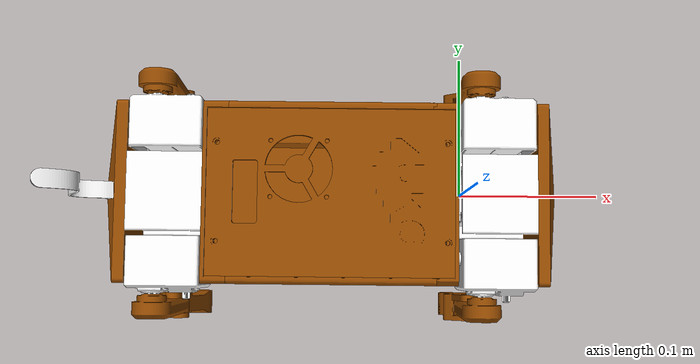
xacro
<?xml version="1.0"?>
<robot name="zuko" xmlns:xacro="http://www.ros.org/wiki/xacro">

   <material name="brown">
    <color rgba="0.588 0.294 0.0 1"/>
  </material>
  <material name="black">
    <color rgba="0.1 0.1 0.1 1"/>
  </material>
  <material name="white">
    <color rgba="1 1 1 1"/>
  </material>

<xacro:macro name="mesh_link" params="name origin_xyz origin_rpy meshfile meshscale c_xyz matname mass i_xyz i_rpy length width height">
	<link name="${name}">
	  <visual>
		<origin rpy="${origin_rpy}" xyz="${origin_xyz}" />
		<geometry>
		  <mesh filename="${meshfile}" scale="${meshscale}"/>
		</geometry>
		<material name="${matname}"/>
	  </visual>
	  <collision>
		<origin rpy="${origin_rpy}" xyz="${c_xyz}" />
		<geometry>
		  <box size="${length} ${width} ${height}" />
		</geometry>
	  </collision>
	  <inertial>
		<mass value="${mass}" />
		<origin rpy="${i_rpy}" xyz="${i_xyz}" /> <!-- Inertial Axes -->
		<inertia ixx="${mass * (width * width + height * height)/12.0}" ixy="${0}" ixz="${0}" iyx="${0}" iyy="${mass * (length * length + height * height)/12.0}" iyz="${0}" izx="${0}" izy="${0}" izz="${mass * (length * length + width * width)/12.0}" />
	  </inertial>
	</link>
	<gazebo reference="${name}">
		<xacro:if value="${matname == 'black'}">
		  <material>Gazebo/Black</material>
		</xacro:if>
		<xacro:if value="${matname == 'white'}">
		  <material>Gazebo/White</material>
		</xacro:if>
	</gazebo>
</xacro:macro>

<xacro:macro name="mesh_mesh_link" params="name origin_xyz origin_rpy meshfile meshscale c_xyz matname mass i_xyz i_rpy length width height">
	<link name="${name}">
	  <visual>
		<origin rpy="${origin_rpy}" xyz="${origin_xyz}" />
		<geometry>
		  <mesh filename="${meshfile}" scale="${meshscale}"/>
		</geometry>
		<material name="${matname}"/>
	  </visual>
	  <collision>
		<origin rpy="${origin_rpy}" xyz="${c_xyz}" />
		<geometry>
		  <mesh filename="${meshfile}" scale="${meshscale}"/>
		</geometry>
	  </collision>
	  <inertial>
		<mass value="${mass}" />
		<origin rpy="${i_rpy}" xyz="${i_xyz}" /> <!-- Inertial Axes -->
		<inertia ixx="${mass * (width * width + height * height)/12.0}" ixy="${0}" ixz="${0}" iyx="${0}" iyy="${mass * (length * length + height * height)/12.0}" iyz="${0}" izx="${0}" izy="${0}" izz="${mass * (length * length + width * width)/12.0}" />
	  </inertial>
	</link>
	<gazebo reference="${name}">
		<xacro:if value="${matname == 'black'}">
		  <material>Gazebo/Black</material>
		</xacro:if>
		<xacro:if value="${matname == 'white'}">
		  <material>Gazebo/White</material>
		</xacro:if>
	</gazebo>
</xacro:macro>

<xacro:macro name="frame_joint" params="name type origin_rpy origin_xyz parent child">
	<joint name="${name}" type="${type}">
	  <origin rpy="${origin_rpy}" xyz="${origin_xyz}" />
	  <parent link="${parent}" />
	  <child link="${child}" />
	</joint>
</xacro:macro>

<xacro:macro name="rev_joint" params="name type axis_xyz origin_rpy origin_xyz parent child effort velocity damping friction upper lower">
    <joint name="${name}" type="${type}">
      <axis xyz="${axis_xyz}" />
      <origin rpy="${origin_rpy}" xyz="${origin_xyz}" />
      <parent link="${parent}" />
      <child link="${child}" />
      <limit effort="${effort}" velocity="${velocity}" lower="${lower}" upper="${upper}"/>
      <joint_properties damping="${damping}" friction="${friction}" />
    </joint>
  </xacro:macro>

<xacro:macro name="transmission" params="leg ">
    <transmission name="${leg}_hip_joint_trans">
        <type>transmission_interface/SimpleTransmission</type>
        <joint name="${leg}_hip_rev_joint">
            <hardwareInterface>hardware_interface/EffortJointInterface</hardwareInterface>
        </joint>
        <actuator name="${leg}_hip_joint_motor">
            <hardwareInterface>hardware_interface/EffortJointInterface</hardwareInterface>
            <mechanicalReduction>1</mechanicalReduction>
        </actuator>
    </transmission>
    <transmission name="${leg}_upper_leg_joint_trans">
        <type>transmission_interface/SimpleTransmission</type>
        <joint name="${leg}_lower_leg_rev_joint">
            <hardwareInterface>hardware_interface/EffortJointInterface</hardwareInterface>
        </joint>
        <actuator name="${leg}_upper_leg_joint_motor">
            <hardwareInterface>hardware_interface/EffortJointInterface</hardwareInterface>
            <mechanicalReduction>1</mechanicalReduction>
        </actuator>
    </transmission>
    <transmission name="${leg}_lower_leg_joint_trans">
        <type>transmission_interface/SimpleTransmission</type>
        <joint name="${leg}_upper_leg_rev_joint">
            <hardwareInterface>hardware_interface/EffortJointInterface</hardwareInterface>
        </joint>
        <actuator name="${leg}_lower_joint_motor">
            <hardwareInterface>hardware_interface/EffortJointInterface</hardwareInterface>
            <mechanicalReduction>1</mechanicalReduction>
        </actuator>
    </transmission>
</xacro:macro>

<!-- STATIC Links -->

	<!-- Offsets-->
	<!-- center front and center back orgin is 2.5mm inside the part-->
	<xacro:property name="center_thickness" value="0.018" />
	<xacro:property name="center_orgin_offset" value="0.0025" />
	<xacro:property name="side_length" value="0.148" />
	<xacro:property name="bridge_length" value="0.0535" />

	<xacro:property name="center_origin_to_top_cover_inset" value="0.019" />

	<xacro:mesh_link name="base_link"
		origin_rpy="${pi/2} 0 -${pi/2}"
		origin_xyz="${-center_orgin_offset} 0 0"
		i_rpy="0 0 0"
		i_xyz="0 0 0"
		mass="0.6"
		c_xyz="${-center_orgin_offset} 0 0"
		length="0"
		width="0"
		height="0"
		matname="brown"
		meshfile="package://stl/center_front.stl"
		meshscale="1 1 1" />

	<xacro:mesh_link name="side_left_link"
		origin_rpy="${pi/2} 0 ${pi/2}"
		origin_xyz="0 0 0"
		i_rpy="0 0 0"
		i_xyz="0 0 0"
		mass="0.6"
		c_xyz="0 0 0"
		length="0"
		width="0"
		height="0"
		matname="brown"
		meshfile="package://stl/side_left.stl"
		meshscale="1 1 1" />

	<xacro:mesh_link name="side_right_link"
		origin_rpy="${pi/2} 0 -${pi/2}"
		origin_xyz="0 0 0"
		i_rpy="0 0 0"
		i_xyz="0 0 0"
		mass="0.6"
		c_xyz="0 0 0"
		length="0"
		width="0"
		height="0"
		matname="brown"
		meshfile="package://stl/side_right.stl"
		meshscale="1 1 1" />

	<xacro:mesh_link name="center_back_link"
		origin_rpy="${pi/2} 0 ${pi/2}"
		origin_xyz="${center_orgin_offset} 0 0"
		i_rpy="0 0 0"
		i_xyz="0 0 0"
		mass="0.6"
		c_xyz="${center_orgin_offset} 0 0"
		length="0"
		width="0"
		height="0"
		matname="brown"
		meshfile="package://stl/center_back.stl"
		meshscale="1 1 1" />

	<xacro:mesh_link name="bridge_front_link"
		origin_rpy="${pi/2} 0 -${pi/2}"
		origin_xyz="0 0 0"
		i_rpy="0 0 0"
		i_xyz="0 0 0"
		mass="0.6"
		c_xyz="0 0 0"
		length="0"
		width="0"
		height="0"
		matname="white"
		meshfile="package://stl/bridge_front.stl"
		meshscale="1 1 1" />

	<xacro:mesh_link name="bridge_back_link"
		origin_rpy="${pi/2} 0 -${pi/2}"
		origin_xyz="0 0 0"
		i_rpy="0 0 0"
		i_xyz="0 0 0"
		mass="0.6"
		c_xyz="0 0 0"
		length="0"
		width="0"
		height="0"
		matname="white"
		meshfile="package://stl/bridge_back.stl"
		meshscale="1 1 1" />

	<xacro:mesh_link name="face_link"
		origin_rpy="${pi/2} 0 ${pi/2}"
		origin_xyz="0 0 0"
		i_rpy="0 0 0"
		i_xyz="0 0 0"
		mass="0.6"
		c_xyz="0 0 0"
		length="0"
		width="0"
		height="0"
		matname="brown"
		meshfile="package://stl/face.stl"
		meshscale="1 1 1" />

	<xacro:mesh_link name="butt_link"
		origin_rpy="${pi/2} 0 -${pi/2}"
		origin_xyz="0 0 0"
		i_rpy="0 0 0"
		i_xyz="0 0 0"
		mass="0.6"
		c_xyz="0 0 0"
		length="0"
		width="0"
		height="0"
		matname="brown"
		meshfile="package://stl/butt.stl"
		meshscale="1 1 1" />

	<xacro:mesh_link name="electronics_cover_link"
		origin_rpy="0 0 0"
		origin_xyz="0 0 0"
		i_rpy="0 0 0"
		i_xyz="0 0 0"
		mass="0.6"
		c_xyz="0 0 0"
		length="0"
		width="0"
		height="0"
		matname="brown"
		meshfile="package://stl/electronics_cover.stl"
		meshscale="1 1 1" />

	<xacro:mesh_link name="battery_cover_link"
		origin_rpy="0 0 0"
		origin_xyz="0 0 0"
		i_rpy="0 0 0"
		i_xyz="0 0 0"
		mass="0.6"
		c_xyz="0 0 0"
		length="0"
		width="0"
		height="0"
		matname="brown"
		meshfile="package://stl/battery_cover.stl"
		meshscale="1 1 1" />

	<xacro:mesh_link name="tail_link"
		origin_rpy="${pi/2} ${35 * pi/180} 0"
		origin_xyz="0 0 0"
		i_rpy="0 0 0"
		i_xyz="0 0 0"
		mass="0.6"
		c_xyz="0 0 0"
		length="0"
		width="0"
		height="0"
		matname="white"
		meshfile="package://stl/tail.stl"
		meshscale="1 1 1" />

<!-- STATIC Joints -->

<xacro:frame_joint name="side_left_joint"
			type="fixed"
			origin_rpy="0 0 0"
			origin_xyz="${-center_thickness - side_length} 0.060 0.015"
			parent="base_link"
			child="side_left_link"/>

<xacro:frame_joint name="side_right_joint"
			type="fixed"
			origin_rpy="0 0 0"
			origin_xyz="-${center_thickness} -0.060 0.015"
			parent="base_link"
			child="side_right_link"/>

<xacro:frame_joint name="center_back_joint"
			type="fixed"
			origin_rpy="0 0 0"
			origin_xyz="${-side_length - center_thickness - center_thickness} 0 0"
			parent="base_link"
			child="center_back_link"/>

<xacro:frame_joint name="bridge_front_joint"
			type="fixed"
			origin_rpy="0 0  0"
			origin_xyz="${bridge_length} 0 -0.010"
			parent="base_link"
			child="bridge_front_link"/>

<xacro:frame_joint name="bridge_back_joint"
			type="fixed"
			origin_rpy="0 0 0"
			origin_xyz="0 0 -0.010"
			parent="center_back_link"
			child="bridge_back_link"/>

<xacro:frame_joint name="face_joint"
			type="fixed"
			origin_rpy="0 0 0"
			origin_xyz="0 0 0"
			parent="bridge_front_link"
			child="face_link"/>

<xacro:frame_joint name="butt_joint"
			type="fixed"
			origin_rpy="0 0 0"
			origin_xyz="-${bridge_length} 0 0"
			parent="bridge_back_link"
			child="butt_link"/>

<xacro:frame_joint name="electronics_cover_joint"
			type="fixed"
			origin_rpy="0 0 ${pi}"
			origin_xyz="${-0.089 - 0.003} 0 ${center_origin_to_top_cover_inset}"
			parent="base_link"
			child="electronics_cover_link"/>

<xacro:frame_joint name="battery_cover_joint"
			type="fixed"
			origin_rpy="${pi} 0 ${pi}"
			origin_xyz="${-0.09075 - 0.003} 0 -0.039"
			parent="base_link"
			child="battery_cover_link"/>

<xacro:frame_joint name="tail_joint"
			type="fixed"
			origin_rpy="0 0 0 "
			origin_xyz="-0.012419 0 0.025687"
			parent="butt_link"
			child="tail_link"/>

<!-- Hips/Legs Links/Joints -->

	<!-- Offsets -->
		<xacro:property name="servo_flange_protrusion_from_center_distance" value="0.002" />
		<xacro:property name="hip_origin_to_upper_leg_servo_origin_x" value="${-0.0145}" />
		<xacro:property name="hip_origin_to_upper_leg_servo_origin_back_x" value="${-0.0145 - .021}" />
		<xacro:property name="hip_origin_to_upper_leg_servo_origin_y" value="${-0.03175}" />
		<xacro:property name="upper_leg_origin_offset_to_center_of_leg" value="${0.0075}" />

	<!-- Lengths -->
		<xacro:property name="upper_leg_length_between_joints" value="${0.100}" />

	<!-- Limits -->
	<!-- No effective limits in the URDF model as they are defined elsewhere,
	 and we want to see if the kinematics don't breach the intended limits -->
		<xacro:property name="hip_upper_limit" value="${30 * pi/180}" />
		<xacro:property name="hip_lower_limit" value="${-30 * pi/180}" />
		<xacro:property name="upper_leg_upper_limit" value="${180 * pi/180}" />
		<xacro:property name="upper_leg_lower_limit" value="${-180 * pi/180}" />
		<xacro:property name="lower_leg_upper_limit" value="${180 * pi/180}" />
		<xacro:property name="lower_leg_lower_limit" value="${-180 * pi/180}" />

	<!-- FRONT LEFT -->
		<xacro:mesh_link name="front_left_hip_link"
				origin_rpy="0 0 0"
				origin_xyz="0 0 0"
				i_rpy="0 0 0"
				i_xyz="0 0 0"
				mass="0.6"
				c_xyz="0 0 0"
				length="0"
				width="0"
				height="0"
				matname="white"
				meshfile="package://stl/hip_front.stl"
				meshscale="1 1 1" />

		<xacro:rev_joint name="front_left_hip_rev_joint"
				type="revolute"
			    axis_xyz="-1 0 0"
			    origin_rpy="0 0 ${pi}"
				origin_xyz="${servo_flange_protrusion_from_center_distance} 0.0455 0"
			    effort="4.0"
			    velocity="4.0"
			    damping="0.0"
			    friction="0.0"
			    upper="${hip_upper_limit}"
			    lower="${hip_lower_limit}"
			    parent="base_link"
			    child="front_left_hip_link" />

		<xacro:mesh_link name="front_left_upper_leg_link"
					origin_rpy="-${pi/2} ${pi/2} 0"
					origin_xyz="0 0 0"
					i_rpy="0 0 0"
					i_xyz="0 0 0"
					mass="0.6"
					c_xyz="0 0 0"
					length="0"
					width="0"
					height="0"
					matname="brown"
					meshfile="package://stl/upper_leg.stl"
					meshscale="1 1 1" />

		<xacro:rev_joint name="front_left_upper_leg_rev_joint"
					type="revolute"
				    axis_xyz="0 1 0"
				    origin_rpy="0 0 ${pi}"
					origin_xyz="${hip_origin_to_upper_leg_servo_origin_x} ${hip_origin_to_upper_leg_servo_origin_y} 0"
				    effort="4.0"
				    velocity="4.0"
				    damping="0.0"
				    friction="0.0"
				    upper="${upper_leg_upper_limit}"
				    lower="${upper_leg_lower_limit}"
				    parent="front_left_hip_link"
				    child="front_left_upper_leg_link" />

		<xacro:mesh_mesh_link name="front_left_lower_leg_link"
					origin_rpy="${pi/2} ${pi/2} ${pi}"
					origin_xyz="0 -${upper_leg_origin_offset_to_center_of_leg} 0"
					i_rpy="0 0 0"
					i_xyz="0 0 0"
					mass="0.6"
					c_xyz="0 -${upper_leg_origin_offset_to_center_of_leg} 0"
					length="0"
					width="0"
					height="0"
					matname="brown"
					meshfile="package://stl/lower_leg.stl"
					meshscale="1 1 1" />

		<xacro:rev_joint name="front_left_lower_leg_rev_joint"
					type="revolute"
				    axis_xyz="0 -1 0"
				    origin_rpy="0 0 ${pi}"
					origin_xyz="${0} ${0} -${upper_leg_length_between_joints}"
				    effort="4.0"
				    velocity="4.0"
				    damping="0.0"
				    friction="0.0"
				    upper="${lower_leg_upper_limit}"
				    lower="${lower_leg_lower_limit}"
				    parent="front_left_upper_leg_link"
				    child="front_left_lower_leg_link" />

		<!-- FRONT RIGHT -->
		<xacro:mesh_link name="front_right_hip_link"
				origin_rpy="0 0 0"
				origin_xyz="0 0 0"
				i_rpy="0 0 0"
				i_xyz="0 0 0"
				mass="0.6"
				c_xyz="0 0 0"
				length="0"
				width="0"
				height="0"
				matname="white"
				meshfile="package://stl/hip_front.stl"
				meshscale="1 -1 1" />

		<xacro:rev_joint name="front_right_hip_rev_joint"
				type="revolute"
			    axis_xyz="-1 0 0"
			    origin_rpy="0 0 ${pi}"
				origin_xyz="${servo_flange_protrusion_from_center_distance} -0.0455 0"
			    effort="4.0"
			    velocity="4.0"
			    damping="0.0"
			    friction="0.0"
			    upper="${hip_upper_limit}"
			    lower="${hip_lower_limit}"
			    parent="base_link"
			    child="front_right_hip_link" />

		<xacro:mesh_link name="front_right_upper_leg_link"
					origin_rpy="-${pi/2} ${pi/2} ${pi}"
					origin_xyz="0 0 0"
					i_rpy="0 0 0"
					i_xyz="0 0 0"
					mass="0.6"
					c_xyz="0 0 0"
					length="0"
					width="0"
					height="0"
					matname="brown"
					meshfile="package://stl/upper_leg.stl"
					meshscale="1 1 1" />

		<xacro:rev_joint name="front_right_upper_leg_rev_joint"
					type="revolute"
				    axis_xyz="0 1 0"
				    origin_rpy="0 0 ${pi}"
					origin_xyz="${hip_origin_to_upper_leg_servo_origin_x} ${-hip_origin_to_upper_leg_servo_origin_y} 0"
				    effort="4.0"
				    velocity="4.0"
				    damping="0.0"
				    friction="0.0"
				    upper="${upper_leg_upper_limit}"
				    lower="${upper_leg_lower_limit}"
				    parent="front_right_hip_link"
				    child="front_right_upper_leg_link" />

		<xacro:mesh_mesh_link name="front_right_lower_leg_link"
					origin_rpy="${pi/2} ${pi/2}  ${pi}"
					origin_xyz="0 ${upper_leg_origin_offset_to_center_of_leg} 0"
					i_rpy="0 0 0"
					i_xyz="0 0 0"
					mass="0.6"
					c_xyz="0 ${upper_leg_origin_offset_to_center_of_leg} 0"
					length="0"
					width="0"
					height="0"
					matname="brown"
					meshfile="package://stl/lower_leg.stl"
					meshscale="1 1 -1" />

		<xacro:rev_joint name="front_right_lower_leg_rev_joint"
					type="revolute"
				    axis_xyz="0 -1 0"
				    origin_rpy="0 0 ${pi}"
					origin_xyz="${0} ${0} -${upper_leg_length_between_joints}"
				    effort="4.0"
				    velocity="4.0"
				    damping="0.0"
				    friction="0.0"
				    upper="${lower_leg_upper_limit}"
				    lower="${lower_leg_lower_limit}"
				    parent="front_right_upper_leg_link"
				    child="front_right_lower_leg_link" />

	    <!-- BACK LEFT -->
		<xacro:mesh_link name="back_left_hip_link"
				origin_rpy="0 0 ${pi}"
				origin_xyz="0 0 0"
				i_rpy="0 0 0"
				i_xyz="0 0 0"
				mass="0.6"
				c_xyz="0 0 0"
				length="0"
				width="0"
				height="0"
				matname="white"
				meshfile="package://stl/hip_back.stl"
				meshscale="1 1 1" />

		<xacro:rev_joint name="back_left_hip_rev_joint"
				type="revolute"
			    axis_xyz="1 0 0"
			    origin_rpy="0 0 0"
				origin_xyz="-${servo_flange_protrusion_from_center_distance} 0.0455 0"
			    effort="4.0"
			    velocity="4.0"
			    damping="0.0"
			    friction="0.0"
			    upper="${hip_upper_limit}"
			    lower="${hip_lower_limit}"
			    parent="center_back_link"
			    child="back_left_hip_link" />

		<xacro:mesh_link name="back_left_upper_leg_link"
					origin_rpy="-${pi/2} ${pi/2} 0"
					origin_xyz="0 0 0"
					i_rpy="0 0 0"
					i_xyz="0 0 0"
					mass="0.6"
					c_xyz="0 0 0"
					length="0"
					width="0"
					height="0"
					matname="brown"
					meshfile="package://stl/upper_leg.stl"
					meshscale="1 1 1" />

		<xacro:rev_joint name="back_left_upper_leg_rev_joint"
					type="revolute"
				    axis_xyz="0 1 0"
				    origin_rpy="0 0 0"
					origin_xyz="${hip_origin_to_upper_leg_servo_origin_back_x} ${-hip_origin_to_upper_leg_servo_origin_y} 0"
				    effort="4.0"
				    velocity="4.0"
				    damping="0.0"
				    friction="0.0"
				    upper="${upper_leg_upper_limit}"
				    lower="${upper_leg_lower_limit}"
				    parent="back_left_hip_link"
				    child="back_left_upper_leg_link" />

		<xacro:mesh_mesh_link name="back_left_lower_leg_link"
					origin_rpy="${pi/2} ${pi/2} ${pi}"
					origin_xyz="0 -${upper_leg_origin_offset_to_center_of_leg} 0"
					i_rpy="0 0 0"
					i_xyz="0 0 0"
					mass="0.6"
					c_xyz="0 -${upper_leg_origin_offset_to_center_of_leg} 0"
					length="0"
					width="0"
					height="0"
					matname="brown"
					meshfile="package://stl/lower_leg.stl"
					meshscale="1 1 1" />

		<xacro:rev_joint name="back_left_lower_leg_rev_joint"
					type="revolute"
				    axis_xyz="0 -1 0"
				    origin_rpy="0 0 ${pi}"
					origin_xyz="${0} ${0} -${upper_leg_length_between_joints}"
				    effort="4.0"
				    velocity="4.0"
				    damping="0.0"
				    friction="0.0"
				    upper="${lower_leg_upper_limit}"
				    lower="${lower_leg_lower_limit}"
				    parent="back_left_upper_leg_link"
				    child="back_left_lower_leg_link" />

		<!-- BACK RIGHT -->
		<xacro:mesh_link name="back_right_hip_link"
				origin_rpy="0 0 ${pi}"
				origin_xyz="0 0 0"
				i_rpy="0 0 0"
				i_xyz="0 0 0"
				mass="0.6"
				c_xyz="0 0 0"
				length="0"
				width="0"
				height="0"
				matname="white"
				meshfile="package://stl/hip_back.stl"
				meshscale="1 -1 1" />

		<xacro:rev_joint name="back_right_hip_rev_joint"
				type="revolute"
			    axis_xyz="1 0 0"
			    origin_rpy="0 0 0"
				origin_xyz="-${servo_flange_protrusion_from_center_distance} -0.0455 0"
			    effort="4.0"
			    velocity="4.0"
			    damping="0.0"
			    friction="0.0"
			    upper="${hip_upper_limit}"
			    lower="${hip_lower_limit}"
			    parent="center_back_link"
			    child="back_right_hip_link" />

		<xacro:mesh_link name="back_right_upper_leg_link"
					origin_rpy="-${pi/2} ${pi/2} ${pi} "
					origin_xyz="0 0 0"
					i_rpy="0 0 0"
					i_xyz="0 0 0"
					mass="0.6"
					c_xyz="0 0 0"
					length="0"
					width="0"
					height="0"
					matname="brown"
					meshfile="package://stl/upper_leg.stl"
					meshscale="1 1 1" />

		<xacro:rev_joint name="back_right_upper_leg_rev_joint"
					type="revolute"
				    axis_xyz="0 1 0"
				    origin_rpy="0 0 0"
					origin_xyz="${hip_origin_to_upper_leg_servo_origin_back_x} ${hip_origin_to_upper_leg_servo_origin_y} 0"
				    effort="4.0"
				    velocity="4.0"
				    damping="0.0"
				    friction="0.0"
				    upper="${upper_leg_upper_limit}"
				    lower="${upper_leg_lower_limit}"
				    parent="back_right_hip_link"
				    child="back_right_upper_leg_link" />

		<xacro:mesh_mesh_link name="back_right_lower_leg_link"
					origin_rpy="${pi/2} ${pi/2} ${pi}"
					origin_xyz="0 ${upper_leg_origin_offset_to_center_of_leg} 0"
					i_rpy="0 0 0"
					i_xyz="0 0 0"
					mass="0.6"
					c_xyz="0 ${upper_leg_origin_offset_to_center_of_leg} 0"
					length="0.1125"
					width="0.25"
					height="0.25"
					matname="brown"
					meshfile="package://stl/lower_leg.stl"
					meshscale="1 1 -1" />

		<xacro:rev_joint name="back_right_lower_leg_rev_joint"
					type="revolute"
				    axis_xyz="0 -1 0"
				    origin_rpy="0 0 ${pi}"
					origin_xyz="${0} ${0} -${upper_leg_length_between_joints}"
				    effort="4.0"
				    velocity="4.0"
				    damping="0.0"
				    friction="0.0"
				    upper="${lower_leg_upper_limit}"
				    lower="${lower_leg_lower_limit}"
				    parent="back_right_upper_leg_link"

				    child="back_right_lower_leg_link" />

<!-- GAZEBO related requirements-->

</robot>
